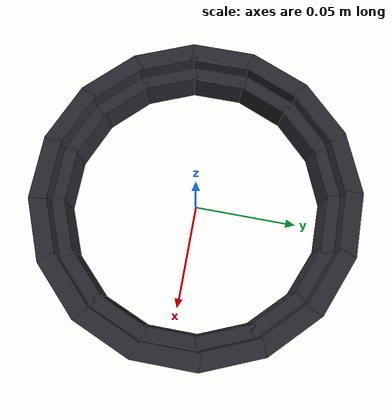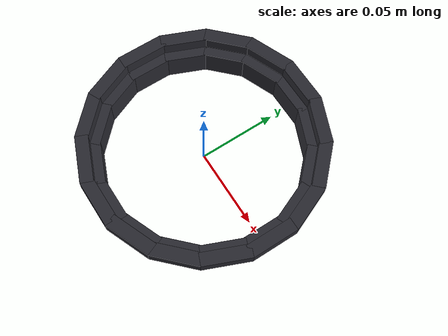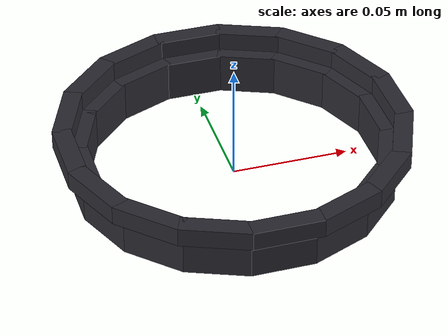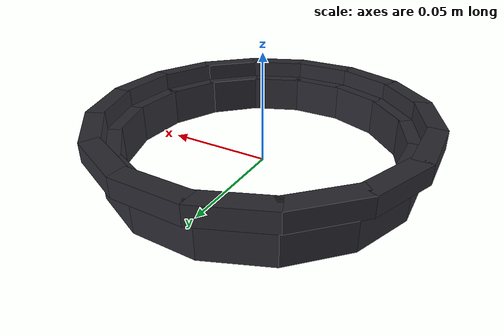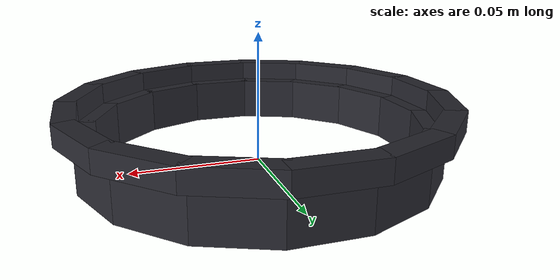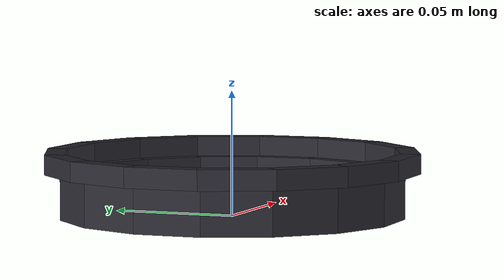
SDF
<?xml version="1.0" ?>
<!-- GENERATED by ros2_ws/src/bartender_gazebo/scripts/make_bottle_stands.py.
     Edit that script and re-run it; edits here are overwritten. -->
<sdf version="1.9">
  <model name="whiskey_stand">
    <static>true</static>
    <link name="stand_link">
      <visual name="wall_0">
        <pose>0.064000 0.000000 0.009000 0 0 0.000000</pose>
        <geometry><box><size>0.008000 0.027052 0.018000</size></box></geometry>
        <material>
          <ambient>0.10 0.10 0.12 1</ambient>
          <diffuse>0.16 0.16 0.19 1</diffuse>
          <specular>0.05 0.05 0.05 1</specular>
        </material>
      </visual>
      <collision name="wall_collision_0">
        <pose>0.064000 0.000000 0.009000 0 0 0.000000</pose>
        <geometry><box><size>0.008000 0.027052 0.018000</size></box></geometry>
        <surface>
          <friction><ode>
            <mu>1.2</mu>
            <mu2>1.2</mu2>
          </ode></friction>
        </surface>
      </collision>
      <visual name="wall_1">
        <pose>0.059128 0.024492 0.009000 0 0 0.392699</pose>
        <geometry><box><size>0.008000 0.027052 0.018000</size></box></geometry>
        <material>
          <ambient>0.10 0.10 0.12 1</ambient>
          <diffuse>0.16 0.16 0.19 1</diffuse>
          <specular>0.05 0.05 0.05 1</specular>
        </material>
      </visual>
      <collision name="wall_collision_1">
        <pose>0.059128 0.024492 0.009000 0 0 0.392699</pose>
        <geometry><box><size>0.008000 0.027052 0.018000</size></box></geometry>
        <surface>
          <friction><ode>
            <mu>1.2</mu>
            <mu2>1.2</mu2>
          </ode></friction>
        </surface>
      </collision>
      <visual name="wall_2">
        <pose>0.045255 0.045255 0.009000 0 0 0.785398</pose>
        <geometry><box><size>0.008000 0.027052 0.018000</size></box></geometry>
        <material>
          <ambient>0.10 0.10 0.12 1</ambient>
          <diffuse>0.16 0.16 0.19 1</diffuse>
          <specular>0.05 0.05 0.05 1</specular>
        </material>
      </visual>
      <collision name="wall_collision_2">
        <pose>0.045255 0.045255 0.009000 0 0 0.785398</pose>
        <geometry><box><size>0.008000 0.027052 0.018000</size></box></geometry>
        <surface>
          <friction><ode>
            <mu>1.2</mu>
            <mu2>1.2</mu2>
          </ode></friction>
        </surface>
      </collision>
      <visual name="wall_3">
        <pose>0.024492 0.059128 0.009000 0 0 1.178097</pose>
        <geometry><box><size>0.008000 0.027052 0.018000</size></box></geometry>
        <material>
          <ambient>0.10 0.10 0.12 1</ambient>
          <diffuse>0.16 0.16 0.19 1</diffuse>
          <specular>0.05 0.05 0.05 1</specular>
        </material>
      </visual>
      <collision name="wall_collision_3">
        <pose>0.024492 0.059128 0.009000 0 0 1.178097</pose>
        <geometry><box><size>0.008000 0.027052 0.018000</size></box></geometry>
        <surface>
          <friction><ode>
            <mu>1.2</mu>
            <mu2>1.2</mu2>
          </ode></friction>
        </surface>
      </collision>
      <visual name="wall_4">
        <pose>0.000000 0.064000 0.009000 0 0 1.570796</pose>
        <geometry><box><size>0.008000 0.027052 0.018000</size></box></geometry>
        <material>
          <ambient>0.10 0.10 0.12 1</ambient>
          <diffuse>0.16 0.16 0.19 1</diffuse>
          <specular>0.05 0.05 0.05 1</specular>
        </material>
      </visual>
      <collision name="wall_collision_4">
        <pose>0.000000 0.064000 0.009000 0 0 1.570796</pose>
        <geometry><box><size>0.008000 0.027052 0.018000</size></box></geometry>
        <surface>
          <friction><ode>
            <mu>1.2</mu>
            <mu2>1.2</mu2>
          </ode></friction>
        </surface>
      </collision>
      <visual name="wall_5">
        <pose>-0.024492 0.059128 0.009000 0 0 1.963495</pose>
        <geometry><box><size>0.008000 0.027052 0.018000</size></box></geometry>
        <material>
          <ambient>0.10 0.10 0.12 1</ambient>
          <diffuse>0.16 0.16 0.19 1</diffuse>
          <specular>0.05 0.05 0.05 1</specular>
        </material>
      </visual>
      <collision name="wall_collision_5">
        <pose>-0.024492 0.059128 0.009000 0 0 1.963495</pose>
        <geometry><box><size>0.008000 0.027052 0.018000</size></box></geometry>
        <surface>
          <friction><ode>
            <mu>1.2</mu>
            <mu2>1.2</mu2>
          </ode></friction>
        </surface>
      </collision>
      <visual name="wall_6">
        <pose>-0.045255 0.045255 0.009000 0 0 2.356194</pose>
        <geometry><box><size>0.008000 0.027052 0.018000</size></box></geometry>
        <material>
          <ambient>0.10 0.10 0.12 1</ambient>
          <diffuse>0.16 0.16 0.19 1</diffuse>
          <specular>0.05 0.05 0.05 1</specular>
        </material>
      </visual>
      <collision name="wall_collision_6">
        <pose>-0.045255 0.045255 0.009000 0 0 2.356194</pose>
        <geometry><box><size>0.008000 0.027052 0.018000</size></box></geometry>
        <surface>
          <friction><ode>
            <mu>1.2</mu>
            <mu2>1.2</mu2>
          </ode></friction>
        </surface>
      </collision>
      <visual name="wall_7">
        <pose>-0.059128 0.024492 0.009000 0 0 2.748894</pose>
        <geometry><box><size>0.008000 0.027052 0.018000</size></box></geometry>
        <material>
          <ambient>0.10 0.10 0.12 1</ambient>
          <diffuse>0.16 0.16 0.19 1</diffuse>
          <specular>0.05 0.05 0.05 1</specular>
        </material>
      </visual>
      <collision name="wall_collision_7">
        <pose>-0.059128 0.024492 0.009000 0 0 2.748894</pose>
        <geometry><box><size>0.008000 0.027052 0.018000</size></box></geometry>
        <surface>
          <friction><ode>
            <mu>1.2</mu>
            <mu2>1.2</mu2>
          </ode></friction>
        </surface>
      </collision>
      <visual name="wall_8">
        <pose>-0.064000 0.000000 0.009000 0 0 3.141593</pose>
        <geometry><box><size>0.008000 0.027052 0.018000</size></box></geometry>
        <material>
          <ambient>0.10 0.10 0.12 1</ambient>
          <diffuse>0.16 0.16 0.19 1</diffuse>
          <specular>0.05 0.05 0.05 1</specular>
        </material>
      </visual>
      <collision name="wall_collision_8">
        <pose>-0.064000 0.000000 0.009000 0 0 3.141593</pose>
        <geometry><box><size>0.008000 0.027052 0.018000</size></box></geometry>
        <surface>
          <friction><ode>
            <mu>1.2</mu>
            <mu2>1.2</mu2>
          </ode></friction>
        </surface>
      </collision>
      <visual name="wall_9">
        <pose>-0.059128 -0.024492 0.009000 0 0 3.534292</pose>
        <geometry><box><size>0.008000 0.027052 0.018000</size></box></geometry>
        <material>
          <ambient>0.10 0.10 0.12 1</ambient>
          <diffuse>0.16 0.16 0.19 1</diffuse>
          <specular>0.05 0.05 0.05 1</specular>
        </material>
      </visual>
      <collision name="wall_collision_9">
        <pose>-0.059128 -0.024492 0.009000 0 0 3.534292</pose>
        <geometry><box><size>0.008000 0.027052 0.018000</size></box></geometry>
        <surface>
          <friction><ode>
            <mu>1.2</mu>
            <mu2>1.2</mu2>
          </ode></friction>
        </surface>
      </collision>
      <visual name="wall_10">
        <pose>-0.045255 -0.045255 0.009000 0 0 3.926991</pose>
        <geometry><box><size>0.008000 0.027052 0.018000</size></box></geometry>
        <material>
          <ambient>0.10 0.10 0.12 1</ambient>
          <diffuse>0.16 0.16 0.19 1</diffuse>
          <specular>0.05 0.05 0.05 1</specular>
        </material>
      </visual>
      <collision name="wall_collision_10">
        <pose>-0.045255 -0.045255 0.009000 0 0 3.926991</pose>
        <geometry><box><size>0.008000 0.027052 0.018000</size></box></geometry>
        <surface>
          <friction><ode>
            <mu>1.2</mu>
            <mu2>1.2</mu2>
          </ode></friction>
        </surface>
      </collision>
      <visual name="wall_11">
        <pose>-0.024492 -0.059128 0.009000 0 0 4.319690</pose>
        <geometry><box><size>0.008000 0.027052 0.018000</size></box></geometry>
        <material>
          <ambient>0.10 0.10 0.12 1</ambient>
          <diffuse>0.16 0.16 0.19 1</diffuse>
          <specular>0.05 0.05 0.05 1</specular>
        </material>
      </visual>
      <collision name="wall_collision_11">
        <pose>-0.024492 -0.059128 0.009000 0 0 4.319690</pose>
        <geometry><box><size>0.008000 0.027052 0.018000</size></box></geometry>
        <surface>
          <friction><ode>
            <mu>1.2</mu>
            <mu2>1.2</mu2>
          </ode></friction>
        </surface>
      </collision>
      <visual name="wall_12">
        <pose>-0.000000 -0.064000 0.009000 0 0 4.712389</pose>
        <geometry><box><size>0.008000 0.027052 0.018000</size></box></geometry>
        <material>
          <ambient>0.10 0.10 0.12 1</ambient>
          <diffuse>0.16 0.16 0.19 1</diffuse>
          <specular>0.05 0.05 0.05 1</specular>
        </material>
      </visual>
      <collision name="wall_collision_12">
        <pose>-0.000000 -0.064000 0.009000 0 0 4.712389</pose>
        <geometry><box><size>0.008000 0.027052 0.018000</size></box></geometry>
        <surface>
          <friction><ode>
            <mu>1.2</mu>
            <mu2>1.2</mu2>
          </ode></friction>
        </surface>
      </collision>
      <visual name="wall_13">
        <pose>0.024492 -0.059128 0.009000 0 0 5.105088</pose>
        <geometry><box><size>0.008000 0.027052 0.018000</size></box></geometry>
        <material>
          <ambient>0.10 0.10 0.12 1</ambient>
          <diffuse>0.16 0.16 0.19 1</diffuse>
          <specular>0.05 0.05 0.05 1</specular>
        </material>
      </visual>
      <collision name="wall_collision_13">
        <pose>0.024492 -0.059128 0.009000 0 0 5.105088</pose>
        <geometry><box><size>0.008000 0.027052 0.018000</size></box></geometry>
        <surface>
          <friction><ode>
            <mu>1.2</mu>
            <mu2>1.2</mu2>
          </ode></friction>
        </surface>
      </collision>
      <visual name="wall_14">
        <pose>0.045255 -0.045255 0.009000 0 0 5.497787</pose>
        <geometry><box><size>0.008000 0.027052 0.018000</size></box></geometry>
        <material>
          <ambient>0.10 0.10 0.12 1</ambient>
          <diffuse>0.16 0.16 0.19 1</diffuse>
          <specular>0.05 0.05 0.05 1</specular>
        </material>
      </visual>
      <collision name="wall_collision_14">
        <pose>0.045255 -0.045255 0.009000 0 0 5.497787</pose>
        <geometry><box><size>0.008000 0.027052 0.018000</size></box></geometry>
        <surface>
          <friction><ode>
            <mu>1.2</mu>
            <mu2>1.2</mu2>
          </ode></friction>
        </surface>
      </collision>
      <visual name="wall_15">
        <pose>0.059128 -0.024492 0.009000 0 0 5.890486</pose>
        <geometry><box><size>0.008000 0.027052 0.018000</size></box></geometry>
        <material>
          <ambient>0.10 0.10 0.12 1</ambient>
          <diffuse>0.16 0.16 0.19 1</diffuse>
          <specular>0.05 0.05 0.05 1</specular>
        </material>
      </visual>
      <collision name="wall_collision_15">
        <pose>0.059128 -0.024492 0.009000 0 0 5.890486</pose>
        <geometry><box><size>0.008000 0.027052 0.018000</size></box></geometry>
        <surface>
          <friction><ode>
            <mu>1.2</mu>
            <mu2>1.2</mu2>
          </ode></friction>
        </surface>
      </collision>
      <visual name="wall_16">
        <pose>0.070000 0.000000 0.022000 0 0 0.000000</pose>
        <geometry><box><size>0.008000 0.029439 0.008000</size></box></geometry>
        <material>
          <ambient>0.10 0.10 0.12 1</ambient>
          <diffuse>0.16 0.16 0.19 1</diffuse>
          <specular>0.05 0.05 0.05 1</specular>
        </material>
      </visual>
      <collision name="wall_collision_16">
        <pose>0.070000 0.000000 0.022000 0 0 0.000000</pose>
        <geometry><box><size>0.008000 0.029439 0.008000</size></box></geometry>
        <surface>
          <friction><ode>
            <mu>1.2</mu>
            <mu2>1.2</mu2>
          </ode></friction>
        </surface>
      </collision>
      <visual name="wall_17">
        <pose>0.064672 0.026788 0.022000 0 0 0.392699</pose>
        <geometry><box><size>0.008000 0.029439 0.008000</size></box></geometry>
        <material>
          <ambient>0.10 0.10 0.12 1</ambient>
          <diffuse>0.16 0.16 0.19 1</diffuse>
          <specular>0.05 0.05 0.05 1</specular>
        </material>
      </visual>
      <collision name="wall_collision_17">
        <pose>0.064672 0.026788 0.022000 0 0 0.392699</pose>
        <geometry><box><size>0.008000 0.029439 0.008000</size></box></geometry>
        <surface>
          <friction><ode>
            <mu>1.2</mu>
            <mu2>1.2</mu2>
          </ode></friction>
        </surface>
      </collision>
      <visual name="wall_18">
        <pose>0.049497 0.049497 0.022000 0 0 0.785398</pose>
        <geometry><box><size>0.008000 0.029439 0.008000</size></box></geometry>
        <material>
          <ambient>0.10 0.10 0.12 1</ambient>
          <diffuse>0.16 0.16 0.19 1</diffuse>
          <specular>0.05 0.05 0.05 1</specular>
        </material>
      </visual>
      <collision name="wall_collision_18">
        <pose>0.049497 0.049497 0.022000 0 0 0.785398</pose>
        <geometry><box><size>0.008000 0.029439 0.008000</size></box></geometry>
        <surface>
          <friction><ode>
            <mu>1.2</mu>
            <mu2>1.2</mu2>
          </ode></friction>
        </surface>
      </collision>
      <visual name="wall_19">
        <pose>0.026788 0.064672 0.022000 0 0 1.178097</pose>
        <geometry><box><size>0.008000 0.029439 0.008000</size></box></geometry>
        <material>
          <ambient>0.10 0.10 0.12 1</ambient>
          <diffuse>0.16 0.16 0.19 1</diffuse>
          <specular>0.05 0.05 0.05 1</specular>
        </material>
      </visual>
      <collision name="wall_collision_19">
        <pose>0.026788 0.064672 0.022000 0 0 1.178097</pose>
        <geometry><box><size>0.008000 0.029439 0.008000</size></box></geometry>
        <surface>
          <friction><ode>
            <mu>1.2</mu>
            <mu2>1.2</mu2>
          </ode></friction>
        </surface>
      </collision>
      <visual name="wall_20">
        <pose>0.000000 0.070000 0.022000 0 0 1.570796</pose>
        <geometry><box><size>0.008000 0.029439 0.008000</size></box></geometry>
        <material>
          <ambient>0.10 0.10 0.12 1</ambient>
          <diffuse>0.16 0.16 0.19 1</diffuse>
          <specular>0.05 0.05 0.05 1</specular>
        </material>
      </visual>
      <collision name="wall_collision_20">
        <pose>0.000000 0.070000 0.022000 0 0 1.570796</pose>
        <geometry><box><size>0.008000 0.029439 0.008000</size></box></geometry>
        <surface>
          <friction><ode>
            <mu>1.2</mu>
            <mu2>1.2</mu2>
          </ode></friction>
        </surface>
      </collision>
      <visual name="wall_21">
        <pose>-0.026788 0.064672 0.022000 0 0 1.963495</pose>
        <geometry><box><size>0.008000 0.029439 0.008000</size></box></geometry>
        <material>
          <ambient>0.10 0.10 0.12 1</ambient>
          <diffuse>0.16 0.16 0.19 1</diffuse>
          <specular>0.05 0.05 0.05 1</specular>
        </material>
      </visual>
      <collision name="wall_collision_21">
        <pose>-0.026788 0.064672 0.022000 0 0 1.963495</pose>
        <geometry><box><size>0.008000 0.029439 0.008000</size></box></geometry>
        <surface>
          <friction><ode>
            <mu>1.2</mu>
            <mu2>1.2</mu2>
          </ode></friction>
        </surface>
      </collision>
      <visual name="wall_22">
        <pose>-0.049497 0.049497 0.022000 0 0 2.356194</pose>
        <geometry><box><size>0.008000 0.029439 0.008000</size></box></geometry>
        <material>
          <ambient>0.10 0.10 0.12 1</ambient>
          <diffuse>0.16 0.16 0.19 1</diffuse>
          <specular>0.05 0.05 0.05 1</specular>
        </material>
      </visual>
      <collision name="wall_collision_22">
        <pose>-0.049497 0.049497 0.022000 0 0 2.356194</pose>
        <geometry><box><size>0.008000 0.029439 0.008000</size></box></geometry>
        <surface>
          <friction><ode>
            <mu>1.2</mu>
            <mu2>1.2</mu2>
          </ode></friction>
        </surface>
      </collision>
      <visual name="wall_23">
        <pose>-0.064672 0.026788 0.022000 0 0 2.748894</pose>
        <geometry><box><size>0.008000 0.029439 0.008000</size></box></geometry>
        <material>
          <ambient>0.10 0.10 0.12 1</ambient>
          <diffuse>0.16 0.16 0.19 1</diffuse>
          <specular>0.05 0.05 0.05 1</specular>
        </material>
      </visual>
      <collision name="wall_collision_23">
        <pose>-0.064672 0.026788 0.022000 0 0 2.748894</pose>
        <geometry><box><size>0.008000 0.029439 0.008000</size></box></geometry>
        <surface>
          <friction><ode>
            <mu>1.2</mu>
            <mu2>1.2</mu2>
          </ode></friction>
        </surface>
      </collision>
      <visual name="wall_24">
        <pose>-0.070000 0.000000 0.022000 0 0 3.141593</pose>
        <geometry><box><size>0.008000 0.029439 0.008000</size></box></geometry>
        <material>
          <ambient>0.10 0.10 0.12 1</ambient>
          <diffuse>0.16 0.16 0.19 1</diffuse>
          <specular>0.05 0.05 0.05 1</specular>
        </material>
      </visual>
      <collision name="wall_collision_24">
        <pose>-0.070000 0.000000 0.022000 0 0 3.141593</pose>
        <geometry><box><size>0.008000 0.029439 0.008000</size></box></geometry>
        <surface>
          <friction><ode>
            <mu>1.2</mu>
            <mu2>1.2</mu2>
          </ode></friction>
        </surface>
      </collision>
      <visual name="wall_25">
        <pose>-0.064672 -0.026788 0.022000 0 0 3.534292</pose>
        <geometry><box><size>0.008000 0.029439 0.008000</size></box></geometry>
        <material>
          <ambient>0.10 0.10 0.12 1</ambient>
          <diffuse>0.16 0.16 0.19 1</diffuse>
          <specular>0.05 0.05 0.05 1</specular>
        </material>
      </visual>
      <collision name="wall_collision_25">
        <pose>-0.064672 -0.026788 0.022000 0 0 3.534292</pose>
        <geometry><box><size>0.008000 0.029439 0.008000</size></box></geometry>
        <surface>
          <friction><ode>
            <mu>1.2</mu>
            <mu2>1.2</mu2>
          </ode></friction>
        </surface>
      </collision>
      <visual name="wall_26">
        <pose>-0.049497 -0.049497 0.022000 0 0 3.926991</pose>
        <geometry><box><size>0.008000 0.029439 0.008000</size></box></geometry>
        <material>
          <ambient>0.10 0.10 0.12 1</ambient>
          <diffuse>0.16 0.16 0.19 1</diffuse>
          <specular>0.05 0.05 0.05 1</specular>
        </material>
      </visual>
      <collision name="wall_collision_26">
        <pose>-0.049497 -0.049497 0.022000 0 0 3.926991</pose>
        <geometry><box><size>0.008000 0.029439 0.008000</size></box></geometry>
        <surface>
          <friction><ode>
            <mu>1.2</mu>
            <mu2>1.2</mu2>
          </ode></friction>
        </surface>
      </collision>
      <visual name="wall_27">
        <pose>-0.026788 -0.064672 0.022000 0 0 4.319690</pose>
        <geometry><box><size>0.008000 0.029439 0.008000</size></box></geometry>
        <material>
          <ambient>0.10 0.10 0.12 1</ambient>
          <diffuse>0.16 0.16 0.19 1</diffuse>
          <specular>0.05 0.05 0.05 1</specular>
        </material>
      </visual>
      <collision name="wall_collision_27">
        <pose>-0.026788 -0.064672 0.022000 0 0 4.319690</pose>
        <geometry><box><size>0.008000 0.029439 0.008000</size></box></geometry>
        <surface>
          <friction><ode>
            <mu>1.2</mu>
            <mu2>1.2</mu2>
          </ode></friction>
        </surface>
      </collision>
      <visual name="wall_28">
        <pose>-0.000000 -0.070000 0.022000 0 0 4.712389</pose>
        <geometry><box><size>0.008000 0.029439 0.008000</size></box></geometry>
        <material>
          <ambient>0.10 0.10 0.12 1</ambient>
          <diffuse>0.16 0.16 0.19 1</diffuse>
          <specular>0.05 0.05 0.05 1</specular>
        </material>
      </visual>
      <collision name="wall_collision_28">
        <pose>-0.000000 -0.070000 0.022000 0 0 4.712389</pose>
        <geometry><box><size>0.008000 0.029439 0.008000</size></box></geometry>
        <surface>
          <friction><ode>
            <mu>1.2</mu>
            <mu2>1.2</mu2>
          </ode></friction>
        </surface>
      </collision>
      <visual name="wall_29">
        <pose>0.026788 -0.064672 0.022000 0 0 5.105088</pose>
        <geometry><box><size>0.008000 0.029439 0.008000</size></box></geometry>
        <material>
          <ambient>0.10 0.10 0.12 1</ambient>
          <diffuse>0.16 0.16 0.19 1</diffuse>
          <specular>0.05 0.05 0.05 1</specular>
        </material>
      </visual>
      <collision name="wall_collision_29">
        <pose>0.026788 -0.064672 0.022000 0 0 5.105088</pose>
        <geometry><box><size>0.008000 0.029439 0.008000</size></box></geometry>
        <surface>
          <friction><ode>
            <mu>1.2</mu>
            <mu2>1.2</mu2>
          </ode></friction>
        </surface>
      </collision>
      <visual name="wall_30">
        <pose>0.049497 -0.049497 0.022000 0 0 5.497787</pose>
        <geometry><box><size>0.008000 0.029439 0.008000</size></box></geometry>
        <material>
          <ambient>0.10 0.10 0.12 1</ambient>
          <diffuse>0.16 0.16 0.19 1</diffuse>
          <specular>0.05 0.05 0.05 1</specular>
        </material>
      </visual>
      <collision name="wall_collision_30">
        <pose>0.049497 -0.049497 0.022000 0 0 5.497787</pose>
        <geometry><box><size>0.008000 0.029439 0.008000</size></box></geometry>
        <surface>
          <friction><ode>
            <mu>1.2</mu>
            <mu2>1.2</mu2>
          </ode></friction>
        </surface>
      </collision>
      <visual name="wall_31">
        <pose>0.064672 -0.026788 0.022000 0 0 5.890486</pose>
        <geometry><box><size>0.008000 0.029439 0.008000</size></box></geometry>
        <material>
          <ambient>0.10 0.10 0.12 1</ambient>
          <diffuse>0.16 0.16 0.19 1</diffuse>
          <specular>0.05 0.05 0.05 1</specular>
        </material>
      </visual>
      <collision name="wall_collision_31">
        <pose>0.064672 -0.026788 0.022000 0 0 5.890486</pose>
        <geometry><box><size>0.008000 0.029439 0.008000</size></box></geometry>
        <surface>
          <friction><ode>
            <mu>1.2</mu>
            <mu2>1.2</mu2>
          </ode></friction>
        </surface>
      </collision>
    </link>
  </model>
</sdf>
